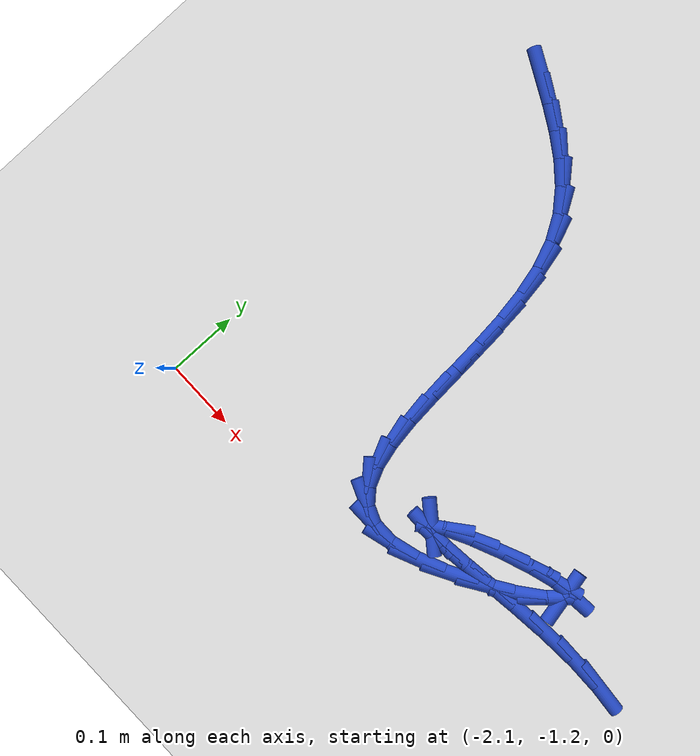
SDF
<sdf version="1.6">
 <world name="default">
  <model name="ground_plane">
   <static>1</static>
   <link name="link">
    <collision name="collision">
     <geometry><plane><normal>0 0 1</normal><size>100 100</size></plane></geometry>
     <surface><friction><ode><mu>100</mu><mu2>50</mu2></ode></friction></surface>
    </collision>
    <visual name="visual">
     <cast_shadows>0</cast_shadows>
     <geometry><plane><normal>0 0 1</normal><size>100 100</size></plane></geometry>
     <material>
      <script><uri>file://media/materials/scripts/gazebo.material</uri><name>Gazebo/WhiteGlow</name></script>
     </material>
    </visual>
   </link>
  </model>
  <model name="line">
   <link name="link_141">
    <pose>-2.053863190575212 -0.5662674142220648 0.01 0 1.57 -0.466779179958228</pose>
    <collision name="collision">
     <geometry><cylinder><radius>0.01</radius><length>0.08</length></cylinder></geometry>
    </collision>
    <visual name="visual">
     <material>
      <script><name>Gazebo/Blue</name><uri>file://media/materials/scripts/gazebo.material</uri></script>
     </material>
     <geometry><cylinder><radius>0.01</radius><length>0.08</length></cylinder></geometry>
    </visual>
   </link>
   <link name="link_142">
    <pose>-2.020080673259987 -0.5832911211358116 0.01 0 1.57 -0.5063965631820235</pose>
    <collision name="collision">
     <geometry><cylinder><radius>0.01</radius><length>0.08</length></cylinder></geometry>
    </collision>
    <visual name="visual">
     <material>
      <script><name>Gazebo/Blue</name><uri>file://media/materials/scripts/gazebo.material</uri></script>
     </material>
     <geometry><cylinder><radius>0.01</radius><length>0.08</length></cylinder></geometry>
    </visual>
   </link>
   <link name="link_143">
    <pose>-1.9866280037769386 -0.601845220210288 0.01 0 1.57 -0.5791412696073297</pose>
    <collision name="collision">
     <geometry><cylinder><radius>0.01</radius><length>0.08</length></cylinder></geometry>
    </collision>
    <visual name="visual">
     <material>
      <script><name>Gazebo/Blue</name><uri>file://media/materials/scripts/gazebo.material</uri></script>
     </material>
     <geometry><cylinder><radius>0.01</radius><length>0.08</length></cylinder></geometry>
    </visual>
   </link>
   <link name="link_144">
    <pose>-1.9546523714528874 -0.6227554228281974 0.01 0 1.57 -0.6873036257446048</pose>
    <collision name="collision">
     <geometry><cylinder><radius>0.01</radius><length>0.08</length></cylinder></geometry>
    </collision>
    <visual name="visual">
     <material>
      <script><name>Gazebo/Blue</name><uri>file://media/materials/scripts/gazebo.material</uri></script>
     </material>
     <geometry><cylinder><radius>0.01</radius><length>0.08</length></cylinder></geometry>
    </visual>
   </link>
   <link name="link_145">
    <pose>-1.9253009656146534 -0.646847440372243 0.01 0 1.57 -0.8323006945800769</pose>
    <collision name="collision">
     <geometry><cylinder><radius>0.01</radius><length>0.08</length></cylinder></geometry>
    </collision>
    <visual name="visual">
     <material>
      <script><name>Gazebo/Blue</name><uri>file://media/materials/scripts/gazebo.material</uri></script>
     </material>
     <geometry><cylinder><radius>0.01</radius><length>0.08</length></cylinder></geometry>
    </visual>
   </link>
   <link name="link_146">
    <pose>-1.8997209755890556 -0.6749469842251281 0.01 0 1.57 -1.0104602435418362</pose>
    <collision name="collision">
     <geometry><cylinder><radius>0.01</radius><length>0.08</length></cylinder></geometry>
    </collision>
    <visual name="visual">
     <material>
      <script><name>Gazebo/Blue</name><uri>file://media/materials/scripts/gazebo.material</uri></script>
     </material>
     <geometry><cylinder><radius>0.01</radius><length>0.08</length></cylinder></geometry>
    </visual>
   </link>
   <link name="link_147">
    <pose>-1.8790588205377445 -0.7078790342869127 0.01 0 1.57 -1.1925280232143585</pose>
    <collision name="collision">
     <geometry><cylinder><radius>0.01</radius><length>0.08</length></cylinder></geometry>
    </collision>
    <visual name="visual">
     <material>
      <script><name>Gazebo/Blue</name><uri>file://media/materials/scripts/gazebo.material</uri></script>
     </material>
     <geometry><cylinder><radius>0.01</radius><length>0.08</length></cylinder></geometry>
    </visual>
   </link>
   <link name="link_148">
    <pose>-1.863925277411485 -0.7459598315582896 0.01 0 1.57 -1.3274124626624821</pose>
    <collision name="collision">
     <geometry><cylinder><radius>0.01</radius><length>0.08</length></cylinder></geometry>
    </collision>
    <visual name="visual">
     <material>
      <script><name>Gazebo/Blue</name><uri>file://media/materials/scripts/gazebo.material</uri></script>
     </material>
     <geometry><cylinder><radius>0.01</radius><length>0.08</length></cylinder></geometry>
    </visual>
   </link>
   <link name="link_149">
    <pose>-1.853459620330786 -0.7881080223114965 0.01 0 1.57 -1.4181069705621883</pose>
    <collision name="collision">
     <geometry><cylinder><radius>0.01</radius><length>0.08</length></cylinder></geometry>
    </collision>
    <visual name="visual">
     <material>
      <script><name>Gazebo/Blue</name><uri>file://media/materials/scripts/gazebo.material</uri></script>
     </material>
     <geometry><cylinder><radius>0.01</radius><length>0.08</length></cylinder></geometry>
    </visual>
   </link>
   <link name="link_150">
    <pose>-1.8465506516094568 -0.8330043612772271 0.01 0 1.57 -1.4747419497152576</pose>
    <collision name="collision">
     <geometry><cylinder><radius>0.01</radius><length>0.08</length></cylinder></geometry>
    </collision>
    <visual name="visual">
     <material>
      <script><name>Gazebo/Blue</name><uri>file://media/materials/scripts/gazebo.material</uri></script>
     </material>
     <geometry><cylinder><radius>0.01</radius><length>0.08</length></cylinder></geometry>
    </visual>
   </link>
   <link name="link_151">
    <pose>-1.8420871735613054 -0.8793296031861755 0.01 0 1.57 -1.5035094117539658</pose>
    <collision name="collision">
     <geometry><cylinder><radius>0.01</radius><length>0.08</length></cylinder></geometry>
    </collision>
    <visual name="visual">
     <material>
      <script><name>Gazebo/Blue</name><uri>file://media/materials/scripts/gazebo.material</uri></script>
     </material>
     <geometry><cylinder><radius>0.01</radius><length>0.08</length></cylinder></geometry>
    </visual>
   </link>
   <link name="link_152">
    <pose>-1.83895798850014 -0.9257645027690352 0.01 0 1.57 -1.5066265140810948</pose>
    <collision name="collision">
     <geometry><cylinder><radius>0.01</radius><length>0.08</length></cylinder></geometry>
    </collision>
    <visual name="visual">
     <material>
      <script><name>Gazebo/Blue</name><uri>file://media/materials/scripts/gazebo.material</uri></script>
     </material>
     <geometry><cylinder><radius>0.01</radius><length>0.08</length></cylinder></geometry>
    </visual>
   </link>
   <link name="link_153">
    <pose>-1.836051898739769 -0.9709898147565 0.01 0 1.57 -1.4821648546791175</pose>
    <collision name="collision">
     <geometry><cylinder><radius>0.01</radius><length>0.08</length></cylinder></geometry>
    </collision>
    <visual name="visual">
     <material>
      <script><name>Gazebo/Blue</name><uri>file://media/materials/scripts/gazebo.material</uri></script>
     </material>
     <geometry><cylinder><radius>0.01</radius><length>0.08</length></cylinder></geometry>
    </visual>
   </link>
   <link name="link_154">
    <pose>-1.8322577065940011 -1.0136862938792641 0.01 0 1.57 -1.4227565834212799</pose>
    <collision name="collision">
     <geometry><cylinder><radius>0.01</radius><length>0.08</length></cylinder></geometry>
    </collision>
    <visual name="visual">
     <material>
      <script><name>Gazebo/Blue</name><uri>file://media/materials/scripts/gazebo.material</uri></script>
     </material>
     <geometry><cylinder><radius>0.01</radius><length>0.08</length></cylinder></geometry>
    </visual>
   </link>
   <link name="link_155">
    <pose>-1.8264642143766452 -1.0525346948680219 0.01 0 1.57 -1.3123470226034555</pose>
    <collision name="collision">
     <geometry><cylinder><radius>0.01</radius><length>0.08</length></cylinder></geometry>
    </collision>
    <visual name="visual">
     <material>
      <script><name>Gazebo/Blue</name><uri>file://media/materials/scripts/gazebo.material</uri></script>
     </material>
     <geometry><cylinder><radius>0.01</radius><length>0.08</length></cylinder></geometry>
    </visual>
   </link>
   <link name="link_156">
    <pose>-1.8175602244015088 -1.0862157724534656 0.01 0 1.57 -1.12111718225314</pose>
    <collision name="collision">
     <geometry><cylinder><radius>0.01</radius><length>0.08</length></cylinder></geometry>
    </collision>
    <visual name="visual">
     <material>
      <script><name>Gazebo/Blue</name><uri>file://media/materials/scripts/gazebo.material</uri></script>
     </material>
     <geometry><cylinder><radius>0.01</radius><length>0.08</length></cylinder></geometry>
    </visual>
   </link>
   <link name="link_157">
    <pose>-1.8044345389824004 -1.1134102813662894 0.01 0 1.57 -0.8099687375262435</pose>
    <collision name="collision">
     <geometry><cylinder><radius>0.01</radius><length>0.08</length></cylinder></geometry>
    </collision>
    <visual name="visual">
     <material>
      <script><name>Gazebo/Blue</name><uri>file://media/materials/scripts/gazebo.material</uri></script>
     </material>
     <geometry><cylinder><radius>0.01</radius><length>0.08</length></cylinder></geometry>
    </visual>
   </link>
   <link name="link_158">
    <pose>-1.7859759604331291 -1.132798976337188 0.01 0 1.57 -0.39093645680332295</pose>
    <collision name="collision">
     <geometry><cylinder><radius>0.01</radius><length>0.08</length></cylinder></geometry>
    </collision>
    <visual name="visual">
     <material>
      <script><name>Gazebo/Blue</name><uri>file://media/materials/scripts/gazebo.material</uri></script>
     </material>
     <geometry><cylinder><radius>0.01</radius><length>0.08</length></cylinder></geometry>
    </visual>
   </link>
   <link name="link_159">
    <pose>-1.7610732910675027 -1.1430626120968541 0.01 0 1.57 0.005565577946661428</pose>
    <collision name="collision">
     <geometry><cylinder><radius>0.01</radius><length>0.08</length></cylinder></geometry>
    </collision>
    <visual name="visual">
     <material>
      <script><name>Gazebo/Blue</name><uri>file://media/materials/scripts/gazebo.material</uri></script>
     </material>
     <geometry><cylinder><radius>0.01</radius><length>0.08</length></cylinder></geometry>
    </visual>
   </link>
   <link name="link_160">
    <pose>-1.7286153562223292 -1.142881963065241 0.01 0 1.57 0.2695350568324775</pose>
    <collision name="collision">
     <geometry><cylinder><radius>0.01</radius><length>0.08</length></cylinder></geometry>
    </collision>
    <visual name="visual">
     <material>
      <script><name>Gazebo/Blue</name><uri>file://media/materials/scripts/gazebo.material</uri></script>
     </material>
     <geometry><cylinder><radius>0.01</radius><length>0.08</length></cylinder></geometry>
    </visual>
   </link>
   <link name="link_161">
    <pose>-1.6884983991672928 -1.1317993469958612 0.01 0 1.57 0.4115127684581614</pose>
    <collision name="collision">
     <geometry><cylinder><radius>0.01</radius><length>0.08</length></cylinder></geometry>
    </collision>
    <visual name="visual">
     <material>
      <script><name>Gazebo/Blue</name><uri>file://media/materials/scripts/gazebo.material</uri></script>
     </material>
     <geometry><cylinder><radius>0.01</radius><length>0.08</length></cylinder></geometry>
    </visual>
   </link>
   <link name="link_162">
    <pose>-1.6443106015056534 -1.1125144255363693 0.01 0 1.57 0.5021555530930781</pose>
    <collision name="collision">
     <geometry><cylinder><radius>0.01</radius><length>0.08</length></cylinder></geometry>
    </collision>
    <visual name="visual">
     <material>
      <script><name>Gazebo/Blue</name><uri>file://media/materials/scripts/gazebo.material</uri></script>
     </material>
     <geometry><cylinder><radius>0.01</radius><length>0.08</length></cylinder></geometry>
    </visual>
   </link>
   <link name="link_163">
    <pose>-1.6004856641021896 -1.0884499480017975 0.01 0 1.57 0.5773263923867609</pose>
    <collision name="collision">
     <geometry><cylinder><radius>0.01</radius><length>0.08</length></cylinder></geometry>
    </collision>
    <visual name="visual">
     <material>
      <script><name>Gazebo/Blue</name><uri>file://media/materials/scripts/gazebo.material</uri></script>
     </material>
     <geometry><cylinder><radius>0.01</radius><length>0.08</length></cylinder></geometry>
    </visual>
   </link>
   <link name="link_164">
    <pose>-1.5614572878216744 -1.0630286637071737 0.01 0 1.57 0.6647758038576436</pose>
    <collision name="collision">
     <geometry><cylinder><radius>0.01</radius><length>0.08</length></cylinder></geometry>
    </collision>
    <visual name="visual">
     <material>
      <script><name>Gazebo/Blue</name><uri>file://media/materials/scripts/gazebo.material</uri></script>
     </material>
     <geometry><cylinder><radius>0.01</radius><length>0.08</length></cylinder></geometry>
    </visual>
   </link>
   <link name="link_165">
    <pose>-1.5316591735288831 -1.0396733219675287 0.01 0 1.57 0.8363087681191924</pose>
    <collision name="collision">
     <geometry><cylinder><radius>0.01</radius><length>0.08</length></cylinder></geometry>
    </collision>
    <visual name="visual">
     <material>
      <script><name>Gazebo/Blue</name><uri>file://media/materials/scripts/gazebo.material</uri></script>
     </material>
     <geometry><cylinder><radius>0.01</radius><length>0.08</length></cylinder></geometry>
    </visual>
   </link>
   <link name="link_166">
    <pose>-1.5155250220885905 -1.021806672097892 0.01 0 1.57 -1.3549534561839904</pose>
    <collision name="collision">
     <geometry><cylinder><radius>0.01</radius><length>0.08</length></cylinder></geometry>
    </collision>
    <visual name="visual">
     <material>
      <script><name>Gazebo/Blue</name><uri>file://media/materials/scripts/gazebo.material</uri></script>
     </material>
     <geometry><cylinder><radius>0.01</radius><length>0.08</length></cylinder></geometry>
    </visual>
   </link>
   <link name="link_167">
    <pose>-1.517488527962412 -1.012851459865406 0.01 0 1.57 0.09728362390768122</pose>
    <collision name="collision">
     <geometry><cylinder><radius>0.01</radius><length>0.08</length></cylinder></geometry>
    </collision>
    <visual name="visual">
     <material>
      <script><name>Gazebo/Blue</name><uri>file://media/materials/scripts/gazebo.material</uri></script>
     </material>
     <geometry><cylinder><radius>0.01</radius><length>0.08</length></cylinder></geometry>
    </visual>
   </link>
   <link name="link_168">
    <pose>-1.5398180109928592 -1.0150306318724498 0.01 0 1.57 0.2899719460080643</pose>
    <collision name="collision">
     <geometry><cylinder><radius>0.01</radius><length>0.08</length></cylinder></geometry>
    </collision>
    <visual name="visual">
     <material>
      <script><name>Gazebo/Blue</name><uri>file://media/materials/scripts/gazebo.material</uri></script>
     </material>
     <geometry><cylinder><radius>0.01</radius><length>0.08</length></cylinder></geometry>
    </visual>
   </link>
   <link name="link_169">
    <pose>-1.5764904493457375 -1.0259730359771426 0.01 0 1.57 0.36095012023837914</pose>
    <collision name="collision">
     <geometry><cylinder><radius>0.01</radius><length>0.08</length></cylinder></geometry>
    </collision>
    <visual name="visual">
     <material>
      <script><name>Gazebo/Blue</name><uri>file://media/materials/scripts/gazebo.material</uri></script>
     </material>
     <geometry><cylinder><radius>0.01</radius><length>0.08</length></cylinder></geometry>
    </visual>
   </link>
   <link name="link_170">
    <pose>-1.6194986028202243 -1.04220809663161 0.01 0 1.57 0.41184920771807815</pose>
    <collision name="collision">
     <geometry><cylinder><radius>0.01</radius><length>0.08</length></cylinder></geometry>
    </collision>
    <visual name="visual">
     <material>
      <script><name>Gazebo/Blue</name><uri>file://media/materials/scripts/gazebo.material</uri></script>
     </material>
     <geometry><cylinder><radius>0.01</radius><length>0.08</length></cylinder></geometry>
    </visual>
   </link>
   <link name="link_171">
    <pose>-1.6608352312154933 -1.0602652382879754 0.01 0 1.57 0.4781895781371387</pose>
    <collision name="collision">
     <geometry><cylinder><radius>0.01</radius><length>0.08</length></cylinder></geometry>
    </collision>
    <visual name="visual">
     <material>
      <script><name>Gazebo/Blue</name><uri>file://media/materials/scripts/gazebo.material</uri></script>
     </material>
     <geometry><cylinder><radius>0.01</radius><length>0.08</length></cylinder></geometry>
    </visual>
   </link>
   <link name="link_172">
    <pose>-1.6924930943307208 -1.0766738853983635 0.01 0 1.57 0.6775315692375476</pose>
    <collision name="collision">
     <geometry><cylinder><radius>0.01</radius><length>0.08</length></cylinder></geometry>
    </collision>
    <visual name="visual">
     <material>
      <script><name>Gazebo/Blue</name><uri>file://media/materials/scripts/gazebo.material</uri></script>
     </material>
     <geometry><cylinder><radius>0.01</radius><length>0.08</length></cylinder></geometry>
    </visual>
   </link>
   <link name="link_173">
    <pose>-1.7065894547488853 -1.0880156320526009 0.01 0 1.57 -0.6524417980339241</pose>
    <collision name="collision">
     <geometry><cylinder><radius>0.01</radius><length>0.08</length></cylinder></geometry>
    </collision>
    <visual name="visual">
     <material>
      <script><name>Gazebo/Blue</name><uri>file://media/materials/scripts/gazebo.material</uri></script>
     </material>
     <geometry><cylinder><radius>0.01</radius><length>0.08</length></cylinder></geometry>
    </visual>
   </link>
   <link name="link_174">
    <pose>-1.7001558925146996 -1.0929312886383578 0.01 0 1.57 0.0075082786558639805</pose>
    <collision name="collision">
     <geometry><cylinder><radius>0.01</radius><length>0.08</length></cylinder></geometry>
    </collision>
    <visual name="visual">
     <material>
      <script><name>Gazebo/Blue</name><uri>file://media/materials/scripts/gazebo.material</uri></script>
     </material>
     <geometry><cylinder><radius>0.01</radius><length>0.08</length></cylinder></geometry>
    </visual>
   </link>
   <link name="link_175">
    <pose>-1.6766511626879361 -1.0927548052607026 0.01 0 1.57 0.10194956402082252</pose>
    <collision name="collision">
     <geometry><cylinder><radius>0.01</radius><length>0.08</length></cylinder></geometry>
    </collision>
    <visual name="visual">
     <material>
      <script><name>Gazebo/Blue</name><uri>file://media/materials/scripts/gazebo.material</uri></script>
     </material>
     <geometry><cylinder><radius>0.01</radius><length>0.08</length></cylinder></geometry>
    </visual>
   </link>
   <link name="link_176">
    <pose>-1.639967942984476 -1.0890019559732829 0.01 0 1.57 0.1257964997939457</pose>
    <collision name="collision">
     <geometry><cylinder><radius>0.01</radius><length>0.08</length></cylinder></geometry>
    </collision>
    <visual name="visual">
     <material>
      <script><name>Gazebo/Blue</name><uri>file://media/materials/scripts/gazebo.material</uri></script>
     </material>
     <geometry><cylinder><radius>0.01</radius><length>0.08</length></cylinder></geometry>
    </visual>
   </link>
   <link name="link_177">
    <pose>-1.5939989111201989 -1.0831885148297453 0.01 0 1.57 0.12316604820316121</pose>
    <collision name="collision">
     <geometry><cylinder><radius>0.01</radius><length>0.08</length></cylinder></geometry>
    </collision>
    <visual name="visual">
     <material>
      <script><name>Gazebo/Blue</name><uri>file://media/materials/scripts/gazebo.material</uri></script>
     </material>
     <geometry><cylinder><radius>0.01</radius><length>0.08</length></cylinder></geometry>
    </visual>
   </link>
   <link name="link_178">
    <pose>-1.5426367448109866 -1.076830255883737 0.01 0 1.57 0.10156074443586682</pose>
    <collision name="collision">
     <geometry><cylinder><radius>0.01</radius><length>0.08</length></cylinder></geometry>
    </collision>
    <visual name="visual">
     <material>
      <script><name>Gazebo/Blue</name><uri>file://media/materials/scripts/gazebo.material</uri></script>
     </material>
     <geometry><cylinder><radius>0.01</radius><length>0.08</length></cylinder></geometry>
    </visual>
   </link>
   <link name="link_179">
    <pose>-1.4897741217727198 -1.0714429531889051 0.01 0 1.57 0.05743113596096273</pose>
    <collision name="collision">
     <geometry><cylinder><radius>0.01</radius><length>0.08</length></cylinder></geometry>
    </collision>
    <visual name="visual">
     <material>
      <script><name>Gazebo/Blue</name><uri>file://media/materials/scripts/gazebo.material</uri></script>
     </material>
     <geometry><cylinder><radius>0.01</radius><length>0.08</length></cylinder></geometry>
    </visual>
   </link>
   <link name="link_180">
    <pose>-1.4393006333107743 -1.0685410121839476 0.01 0 1.57 -0.01232275654116502</pose>
    <collision name="collision">
     <geometry><cylinder><radius>0.01</radius><length>0.08</length></cylinder></geometry>
    </collision>
    <visual name="visual">
     <material>
      <script><name>Gazebo/Blue</name><uri>file://media/materials/scripts/gazebo.material</uri></script>
     </material>
     <geometry><cylinder><radius>0.01</radius><length>0.08</length></cylinder></geometry>
    </visual>
   </link>
   <link name="link_181">
    <pose>-1.3938920692369516 -1.0691005991886902 0.01 0 1.57 -0.08921579935985371</pose>
    <collision name="collision">
     <geometry><cylinder><radius>0.01</radius><length>0.08</length></cylinder></geometry>
    </collision>
    <visual name="visual">
     <material>
      <script><name>Gazebo/Blue</name><uri>file://media/materials/scripts/gazebo.material</uri></script>
     </material>
     <geometry><cylinder><radius>0.01</radius><length>0.08</length></cylinder></geometry>
    </visual>
   </link>
  </model>
 </world>
</sdf>
